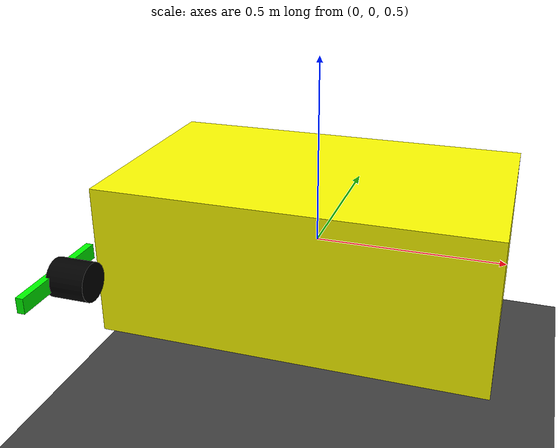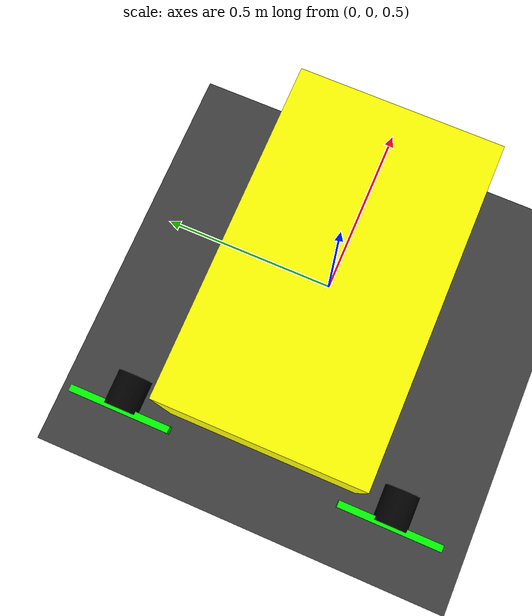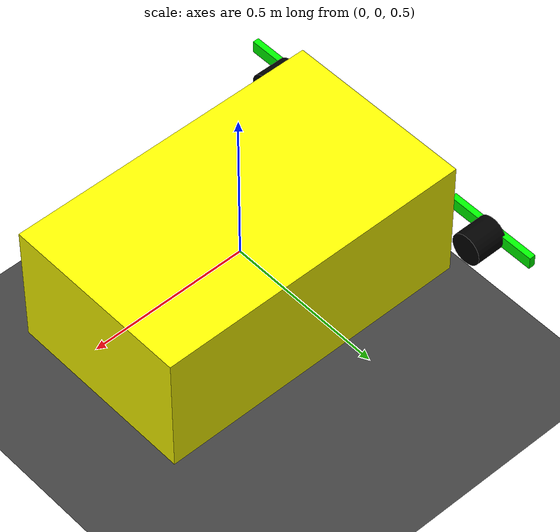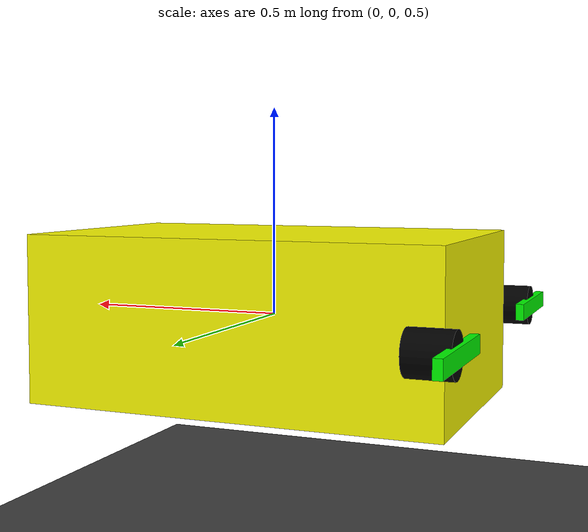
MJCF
<!-- ./model/hero/boat.xml -->
<mujoco>
    <option gravity="0 0 -9.81" integrator="RK4" timestep="0.01"/>
    <asset>
        <texture name="grid" type="2d" builtin="checker" width="512" height="512" rgb1="0.2 0.2 0.2" rgb2="0.3 0.3 0.3"/>
        <material name="grid" texture="grid" texrepeat="10 10" texuniform="true" reflectance=".3"/>
    </asset>

    <default>
        <joint damping="0.03"/>
        <geom density="500" friction="0.8 0.8 0.8"/>
    </default>

    <worldbody>
        <geom name="grid" type="plane" size="0 0 .01" material="grid"/>

        <!-- Boat -->
        <body name="boat" pos="0 0 0.5">
            <freejoint />
            <!-- Hull -->
            <light name="boat_light" pos="0 0 2" mode="trackcom" diffuse="0.7 0.7 0.7"/>
            <geom type="box" size="0.5 0.3 0.2" rgba="1 1 0 1" />
             <!-- Left and Right thruster -->
            <body name="thruster left" pos="-0.5 0.4 0" euler="0 90 0">
                <joint name="propeller_left_joint" type="hinge" axis="0 0 1" />
                <geom type="cylinder" size="0.05 0.05" rgba="0 0 0 1"/>
                <geom type="box" size="0.02 0.15 0.01" pos="0 0 -0.05" rgba="0 1 0 1"/>
            </body>
            <body name="thruster right" pos="-0.5 -0.4 0" euler="0 90 0">
                <joint name="propeller_right_joint" type="hinge" axis="0 0 1" />
                <geom type="cylinder" size="0.05 0.05" rgba="0 0 0 1"/>
                <geom type="box" size="0.02 0.15 0.01" pos="0 0 -0.05" rgba="0 1 0 1"/>
            </body>
        </body>
    </worldbody>

    <actuator>
        <!-- Left and Right thruster -->
        <motor name="left_motor" joint="propeller_left_joint" ctrlrange="-5 5"/>
        <motor name="right_motor" joint="propeller_right_joint" ctrlrange="-5 5"/>
    </actuator>
</mujoco>
